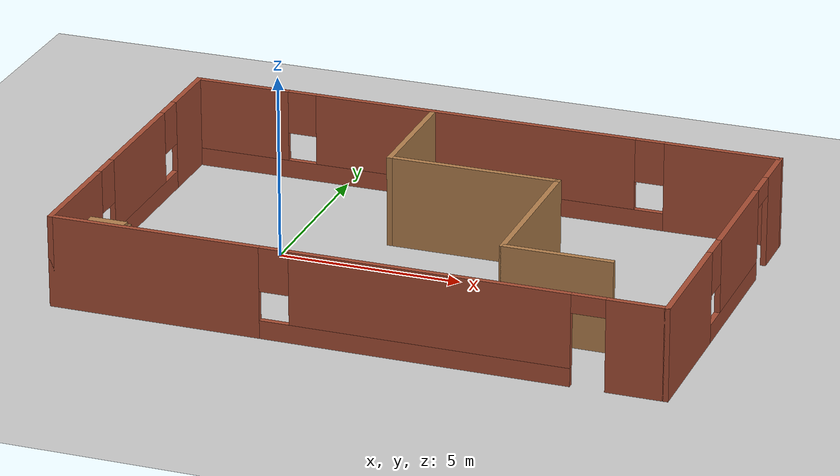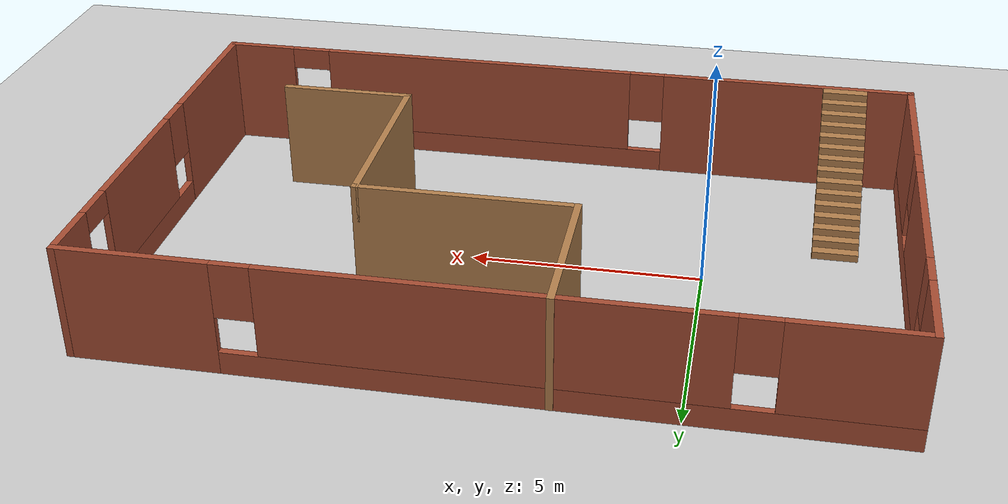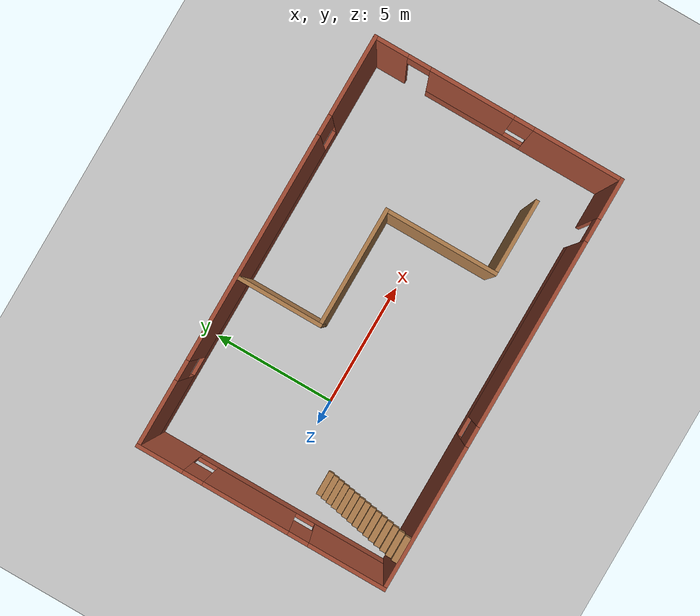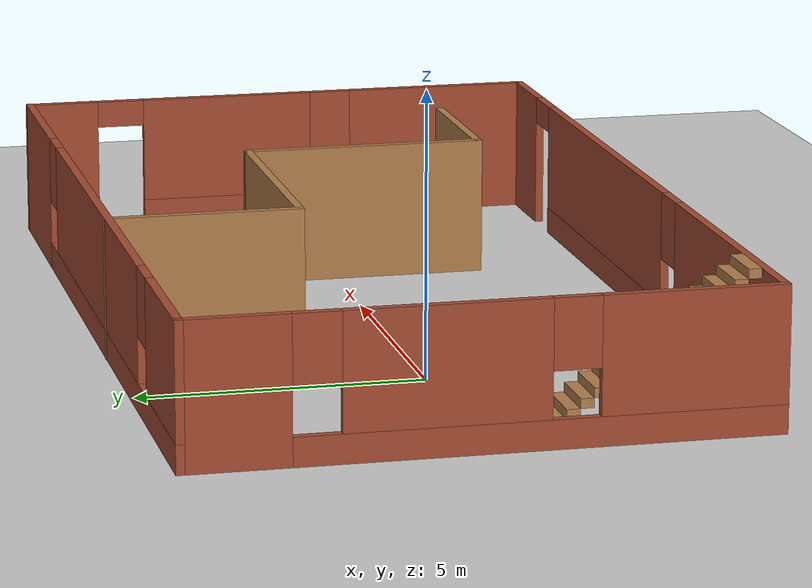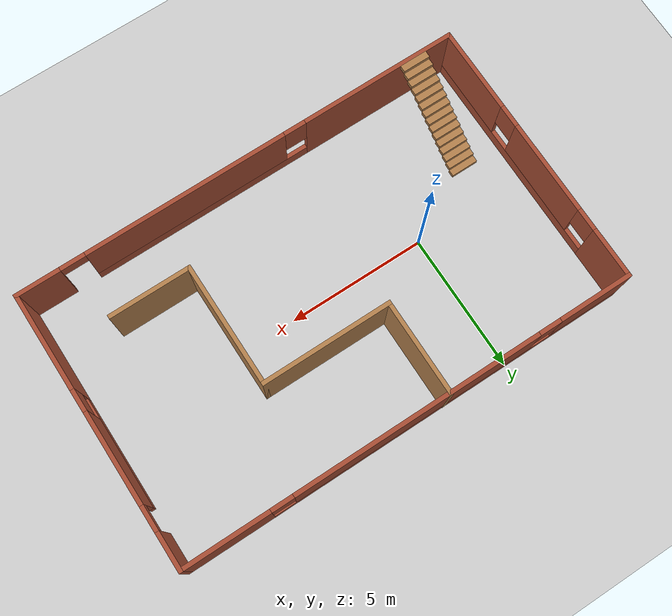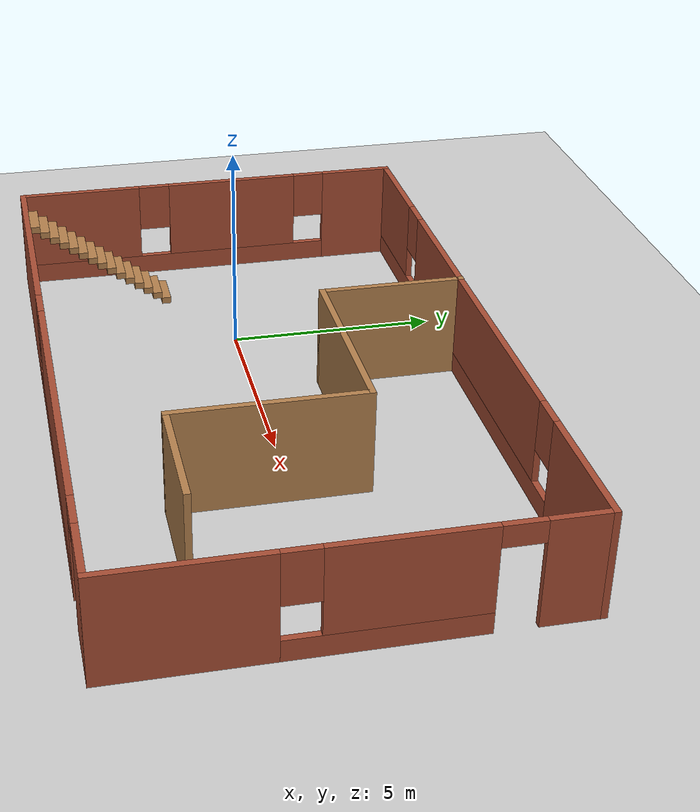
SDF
<sdf version="1.7">
 <world name="default">
  <light name="sun" type="directional">
   <pose>0 0 10 0 -0 0</pose>
   <diffuse>0.8 0.8 0.8 1</diffuse>
   <specular>0.2 0.2 0.2 1</specular>
   <attenuation>
    <range>1000</range>
    <constant>0.9</constant>
    <linear>0.01</linear>
    <quadratic>0.001</quadratic>
   </attenuation>
   <direction>-0.5 0.1 -0.9</direction>
   <spot><inner_angle>0</inner_angle><outer_angle>0</outer_angle><falloff>0</falloff></spot>
  </light>
  <model name="ground_plane">
   <static>1</static>
   <link name="link">
    <collision name="collision">
     <geometry><plane><normal>0 0 1</normal><size>100 100</size></plane></geometry>
     <surface>
      <contact><collide_bitmask>65535</collide_bitmask></contact>
      <friction><ode><mu>100</mu><mu2>50</mu2></ode></friction>
     </surface>
    </collision>
    <visual name="visual">
     <cast_shadows>0</cast_shadows>
     <geometry><plane><normal>0 0 1</normal><size>100 100</size></plane></geometry>
     <material>
      <script><uri>file://media/materials/scripts/gazebo.material</uri><name>Gazebo/Grey</name></script>
     </material>
    </visual>
   </link>
  </model>
  <gravity>0 0 -9.8</gravity>
  <magnetic_field>6e-06 2.3e-05 -4.2e-05</magnetic_field>
  <atmosphere type="adiabatic"/>
  <physics type="ode">
   <max_step_size>0.001</max_step_size>
   <real_time_factor>1</real_time_factor>
   <real_time_update_rate>1000</real_time_update_rate>
  </physics>
  <scene><ambient>0.4 0.4 0.4 1</ambient><background>0.7 0.7 0.7 1</background><shadows>1</shadows></scene>
  <spherical_coordinates>
   <surface_model>EARTH_WGS84</surface_model>
   <latitude_deg>0</latitude_deg>
   <longitude_deg>0</longitude_deg>
   <elevation>0</elevation>
   <heading_deg>0</heading_deg>
  </spherical_coordinates>
  <model name="house_test">
   <pose>3.879 0.0645 0 0 -0 0</pose>
   <link name="Stairs_1">
    <visual name="Stairs_1_Visual_0">
     <pose>-6.69443 -1.48082 0.083333 0 -0 0</pose>
     <geometry><box><size>1 0.233333 0.166667</size></box></geometry>
     <material>
      <script><uri>file://media/materials/scripts/gazebo.material</uri><name>Gazebo/Wood</name></script>
      <ambient>1 1 1 1</ambient>
     </material>
     <meta><layer>0</layer></meta>
    </visual>
    <collision name="Stairs_1_Collision_0">
     <geometry><box><size>1 0.233333 0.166667</size></box></geometry>
     <pose>-6.69443 -1.48082 0.083333 0 -0 0</pose>
    </collision>
    <visual name="Stairs_1_Visual_1">
     <pose>-6.69443 -1.71416 0.25 0 -0 0</pose>
     <geometry><box><size>1 0.233333 0.166667</size></box></geometry>
     <material>
      <script><uri>file://media/materials/scripts/gazebo.material</uri><name>Gazebo/Wood</name></script>
      <ambient>1 1 1 1</ambient>
     </material>
     <meta><layer>0</layer></meta>
    </visual>
    <collision name="Stairs_1_Collision_1">
     <geometry><box><size>1 0.233333 0.166667</size></box></geometry>
     <pose>-6.69443 -1.71416 0.25 0 -0 0</pose>
    </collision>
    <visual name="Stairs_1_Visual_2">
     <pose>-6.69443 -1.94749 0.416667 0 -0 0</pose>
     <geometry><box><size>1 0.233333 0.166667</size></box></geometry>
     <material>
      <script><uri>file://media/materials/scripts/gazebo.material</uri><name>Gazebo/Wood</name></script>
      <ambient>1 1 1 1</ambient>
     </material>
     <meta><layer>0</layer></meta>
    </visual>
    <collision name="Stairs_1_Collision_2">
     <geometry><box><size>1 0.233333 0.166667</size></box></geometry>
     <pose>-6.69443 -1.94749 0.416667 0 -0 0</pose>
    </collision>
    <visual name="Stairs_1_Visual_3">
     <pose>-6.69443 -2.18082 0.583333 0 -0 0</pose>
     <geometry><box><size>1 0.233333 0.166667</size></box></geometry>
     <material>
      <script><uri>file://media/materials/scripts/gazebo.material</uri><name>Gazebo/Wood</name></script>
      <ambient>1 1 1 1</ambient>
     </material>
     <meta><layer>0</layer></meta>
    </visual>
    <collision name="Stairs_1_Collision_3">
     <geometry><box><size>1 0.233333 0.166667</size></box></geometry>
     <pose>-6.69443 -2.18082 0.583333 0 -0 0</pose>
    </collision>
    <visual name="Stairs_1_Visual_4">
     <pose>-6.69443 -2.41416 0.75 0 -0 0</pose>
     <geometry><box><size>1 0.233333 0.166667</size></box></geometry>
     <material>
      <script><uri>file://media/materials/scripts/gazebo.material</uri><name>Gazebo/Wood</name></script>
      <ambient>1 1 1 1</ambient>
     </material>
     <meta><layer>0</layer></meta>
    </visual>
    <collision name="Stairs_1_Collision_4">
     <geometry><box><size>1 0.233333 0.166667</size></box></geometry>
     <pose>-6.69443 -2.41416 0.75 0 -0 0</pose>
    </collision>
    <visual name="Stairs_1_Visual_5">
     <pose>-6.69443 -2.64749 0.916667 0 -0 0</pose>
     <geometry><box><size>1 0.233333 0.166667</size></box></geometry>
     <material>
      <script><uri>file://media/materials/scripts/gazebo.material</uri><name>Gazebo/Wood</name></script>
      <ambient>1 1 1 1</ambient>
     </material>
     <meta><layer>0</layer></meta>
    </visual>
    <collision name="Stairs_1_Collision_5">
     <geometry><box><size>1 0.233333 0.166667</size></box></geometry>
     <pose>-6.69443 -2.64749 0.916667 0 -0 0</pose>
    </collision>
    <visual name="Stairs_1_Visual_6">
     <pose>-6.69443 -2.88082 1.08333 0 -0 0</pose>
     <geometry><box><size>1 0.233333 0.166667</size></box></geometry>
     <material>
      <script><uri>file://media/materials/scripts/gazebo.material</uri><name>Gazebo/Wood</name></script>
      <ambient>1 1 1 1</ambient>
     </material>
     <meta><layer>0</layer></meta>
    </visual>
    <collision name="Stairs_1_Collision_6">
     <geometry><box><size>1 0.233333 0.166667</size></box></geometry>
     <pose>-6.69443 -2.88082 1.08333 0 -0 0</pose>
    </collision>
    <visual name="Stairs_1_Visual_7">
     <pose>-6.69443 -3.11416 1.25 0 -0 0</pose>
     <geometry><box><size>1 0.233333 0.166667</size></box></geometry>
     <material>
      <script><uri>file://media/materials/scripts/gazebo.material</uri><name>Gazebo/Wood</name></script>
      <ambient>1 1 1 1</ambient>
     </material>
     <meta><layer>0</layer></meta>
    </visual>
    <collision name="Stairs_1_Collision_7">
     <geometry><box><size>1 0.233333 0.166667</size></box></geometry>
     <pose>-6.69443 -3.11416 1.25 0 -0 0</pose>
    </collision>
    <visual name="Stairs_1_Visual_8">
     <pose>-6.69443 -3.34749 1.41667 0 -0 0</pose>
     <geometry><box><size>1 0.233333 0.166667</size></box></geometry>
     <material>
      <script><uri>file://media/materials/scripts/gazebo.material</uri><name>Gazebo/Wood</name></script>
      <ambient>1 1 1 1</ambient>
     </material>
     <meta><layer>0</layer></meta>
    </visual>
    <collision name="Stairs_1_Collision_8">
     <geometry><box><size>1 0.233333 0.166667</size></box></geometry>
     <pose>-6.69443 -3.34749 1.41667 0 -0 0</pose>
    </collision>
    <visual name="Stairs_1_Visual_9">
     <pose>-6.69443 -3.58082 1.58333 0 -0 0</pose>
     <geometry><box><size>1 0.233333 0.166667</size></box></geometry>
     <material>
      <script><uri>file://media/materials/scripts/gazebo.material</uri><name>Gazebo/Wood</name></script>
      <ambient>1 1 1 1</ambient>
     </material>
     <meta><layer>0</layer></meta>
    </visual>
    <collision name="Stairs_1_Collision_9">
     <geometry><box><size>1 0.233333 0.166667</size></box></geometry>
     <pose>-6.69443 -3.58082 1.58333 0 -0 0</pose>
    </collision>
    <visual name="Stairs_1_Visual_10">
     <pose>-6.69443 -3.81416 1.75 0 -0 0</pose>
     <geometry><box><size>1 0.233333 0.166667</size></box></geometry>
     <material>
      <script><uri>file://media/materials/scripts/gazebo.material</uri><name>Gazebo/Wood</name></script>
      <ambient>1 1 1 1</ambient>
     </material>
     <meta><layer>0</layer></meta>
    </visual>
    <collision name="Stairs_1_Collision_10">
     <geometry><box><size>1 0.233333 0.166667</size></box></geometry>
     <pose>-6.69443 -3.81416 1.75 0 -0 0</pose>
    </collision>
    <visual name="Stairs_1_Visual_11">
     <pose>-6.69443 -4.04749 1.91667 0 -0 0</pose>
     <geometry><box><size>1 0.233333 0.166667</size></box></geometry>
     <material>
      <script><uri>file://media/materials/scripts/gazebo.material</uri><name>Gazebo/Wood</name></script>
      <ambient>1 1 1 1</ambient>
     </material>
     <meta><layer>0</layer></meta>
    </visual>
    <collision name="Stairs_1_Collision_11">
     <geometry><box><size>1 0.233333 0.166667</size></box></geometry>
     <pose>-6.69443 -4.04749 1.91667 0 -0 0</pose>
    </collision>
    <visual name="Stairs_1_Visual_12">
     <pose>-6.69443 -4.28082 2.08333 0 -0 0</pose>
     <geometry><box><size>1 0.233333 0.166667</size></box></geometry>
     <material>
      <script><uri>file://media/materials/scripts/gazebo.material</uri><name>Gazebo/Wood</name></script>
      <ambient>1 1 1 1</ambient>
     </material>
     <meta><layer>0</layer></meta>
    </visual>
    <collision name="Stairs_1_Collision_12">
     <geometry><box><size>1 0.233333 0.166667</size></box></geometry>
     <pose>-6.69443 -4.28082 2.08333 0 -0 0</pose>
    </collision>
    <visual name="Stairs_1_Visual_13">
     <pose>-6.69443 -4.51416 2.25 0 -0 0</pose>
     <geometry><box><size>1 0.233333 0.166667</size></box></geometry>
     <material>
      <script><uri>file://media/materials/scripts/gazebo.material</uri><name>Gazebo/Wood</name></script>
      <ambient>1 1 1 1</ambient>
     </material>
     <meta><layer>0</layer></meta>
    </visual>
    <collision name="Stairs_1_Collision_13">
     <geometry><box><size>1 0.233333 0.166667</size></box></geometry>
     <pose>-6.69443 -4.51416 2.25 0 -0 0</pose>
    </collision>
    <visual name="Stairs_1_Visual_14">
     <pose>-6.69443 -4.74749 2.41667 0 -0 0</pose>
     <geometry><box><size>1 0.233333 0.166667</size></box></geometry>
     <material>
      <script><uri>file://media/materials/scripts/gazebo.material</uri><name>Gazebo/Wood</name></script>
      <ambient>1 1 1 1</ambient>
     </material>
     <meta><layer>0</layer></meta>
    </visual>
    <collision name="Stairs_1_Collision_14">
     <geometry><box><size>1 0.233333 0.166667</size></box></geometry>
     <pose>-6.69443 -4.74749 2.41667 0 -0 0</pose>
    </collision>
   </link>
   <link name="Wall_54">
    <pose>-8.175 -0.0035 0 0 -0 -1.5708</pose>
    <visual name="Wall_54_Visual_0">
     <pose>-4.07 0 1.25 0 -0 0</pose>
     <geometry><box><size>1.86001 0.15 2.5</size></box></geometry>
     <material>
      <script><uri>file://media/materials/scripts/gazebo.material</uri><name>Gazebo/Bricks</name></script>
      <ambient>1 1 1 1</ambient>
     </material>
     <meta><layer>0</layer></meta>
    </visual>
    <collision name="Wall_54_Collision_0">
     <geometry><box><size>1.86001 0.15 2.5</size></box></geometry>
     <pose>-4.07 0 1.25 0 -0 0</pose>
    </collision>
    <visual name="Wall_54_Visual_1">
     <pose>0.930004 0 0.25 0 -0 0</pose>
     <geometry><box><size>8.13999 0.15 0.5</size></box></geometry>
     <material>
      <script><uri>file://media/materials/scripts/gazebo.material</uri><name>Gazebo/Bricks</name></script>
      <ambient>1 1 1 1</ambient>
     </material>
     <meta><layer>0</layer></meta>
    </visual>
    <collision name="Wall_54_Collision_1">
     <geometry><box><size>8.13999 0.15 0.5</size></box></geometry>
     <pose>0.930004 0 0.25 0 -0 0</pose>
    </collision>
    <visual name="Wall_54_Visual_2">
     <pose>-0.634401 0 1.5 0 -0 0</pose>
     <geometry><box><size>3.41118 0.15 2</size></box></geometry>
     <material>
      <script><uri>file://media/materials/scripts/gazebo.material</uri><name>Gazebo/Bricks</name></script>
      <ambient>1 1 1 1</ambient>
     </material>
     <meta><layer>0</layer></meta>
    </visual>
    <collision name="Wall_54_Collision_2">
     <geometry><box><size>3.41118 0.15 2</size></box></geometry>
     <pose>-0.634401 0 1.5 0 -0 0</pose>
    </collision>
    <visual name="Wall_54_Visual_3">
     <pose>3.4356 0 1.5 0 -0 0</pose>
     <geometry><box><size>3.12881 0.15 2</size></box></geometry>
     <material>
      <script><uri>file://media/materials/scripts/gazebo.material</uri><name>Gazebo/Bricks</name></script>
      <ambient>1 1 1 1</ambient>
     </material>
     <meta><layer>0</layer></meta>
    </visual>
    <collision name="Wall_54_Collision_3">
     <geometry><box><size>3.12881 0.15 2</size></box></geometry>
     <pose>3.4356 0 1.5 0 -0 0</pose>
    </collision>
    <visual name="Wall_54_Visual_4">
     <pose>-2.73999 0 1.9 0 -0 0</pose>
     <geometry><box><size>0.8 0.15 1.2</size></box></geometry>
     <material>
      <script><uri>file://media/materials/scripts/gazebo.material</uri><name>Gazebo/Bricks</name></script>
      <ambient>1 1 1 1</ambient>
     </material>
     <meta><layer>0</layer></meta>
    </visual>
    <collision name="Wall_54_Collision_4">
     <geometry><box><size>0.8 0.15 1.2</size></box></geometry>
     <pose>-2.73999 0 1.9 0 -0 0</pose>
    </collision>
    <visual name="Wall_54_Visual_5">
     <pose>1.47119 0 1.9 0 -0 0</pose>
     <geometry><box><size>0.8 0.15 1.2</size></box></geometry>
     <material>
      <script><uri>file://media/materials/scripts/gazebo.material</uri><name>Gazebo/Bricks</name></script>
      <ambient>1 1 1 1</ambient>
     </material>
     <meta><layer>0</layer></meta>
    </visual>
    <collision name="Wall_54_Collision_5">
     <geometry><box><size>0.8 0.15 1.2</size></box></geometry>
     <pose>1.47119 0 1.9 0 -0 0</pose>
    </collision>
   </link>
   <link name="Wall_55">
    <pose>0 -4.9285 0 0 -0 0</pose>
    <visual name="Wall_55_Visual_0">
     <pose>-5.37374 0 1.25 0 -0 0</pose>
     <geometry><box><size>5.75251 0.15 2.5</size></box></geometry>
     <material>
      <script><uri>file://media/materials/scripts/gazebo.material</uri><name>Gazebo/Bricks</name></script>
      <ambient>1 1 1 1</ambient>
     </material>
     <meta><layer>0</layer></meta>
    </visual>
    <collision name="Wall_55_Collision_0">
     <geometry><box><size>5.75251 0.15 2.5</size></box></geometry>
     <pose>-5.37374 0 1.25 0 -0 0</pose>
    </collision>
    <visual name="Wall_55_Visual_1">
     <pose>7.43185 0 1.25 0 -0 0</pose>
     <geometry><box><size>1.63631 0.15 2.5</size></box></geometry>
     <material>
      <script><uri>file://media/materials/scripts/gazebo.material</uri><name>Gazebo/Bricks</name></script>
      <ambient>1 1 1 1</ambient>
     </material>
     <meta><layer>0</layer></meta>
    </visual>
    <collision name="Wall_55_Collision_1">
     <geometry><box><size>1.63631 0.15 2.5</size></box></geometry>
     <pose>7.43185 0 1.25 0 -0 0</pose>
    </collision>
    <visual name="Wall_55_Visual_2">
     <pose>1.6081 0 0.25 0 -0 0</pose>
     <geometry><box><size>8.21118 0.15 0.5</size></box></geometry>
     <material>
      <script><uri>file://media/materials/scripts/gazebo.material</uri><name>Gazebo/Bricks</name></script>
      <ambient>1 1 1 1</ambient>
     </material>
     <meta><layer>0</layer></meta>
    </visual>
    <collision name="Wall_55_Collision_2">
     <geometry><box><size>8.21118 0.15 0.5</size></box></geometry>
     <pose>1.6081 0 0.25 0 -0 0</pose>
    </collision>
    <visual name="Wall_55_Visual_3">
     <pose>2.0081 0 1.5 0 -0 0</pose>
     <geometry><box><size>7.41118 0.15 2</size></box></geometry>
     <material>
      <script><uri>file://media/materials/scripts/gazebo.material</uri><name>Gazebo/Bricks</name></script>
      <ambient>1 1 1 1</ambient>
     </material>
     <meta><layer>0</layer></meta>
    </visual>
    <collision name="Wall_55_Collision_3">
     <geometry><box><size>7.41118 0.15 2</size></box></geometry>
     <pose>2.0081 0 1.5 0 -0 0</pose>
    </collision>
    <visual name="Wall_55_Visual_4">
     <pose>-2.09749 0 1.9 0 -0 0</pose>
     <geometry><box><size>0.8 0.15 1.2</size></box></geometry>
     <material>
      <script><uri>file://media/materials/scripts/gazebo.material</uri><name>Gazebo/Bricks</name></script>
      <ambient>1 1 1 1</ambient>
     </material>
     <meta><layer>0</layer></meta>
    </visual>
    <collision name="Wall_55_Collision_4">
     <geometry><box><size>0.8 0.15 1.2</size></box></geometry>
     <pose>-2.09749 0 1.9 0 -0 0</pose>
    </collision>
    <visual name="Wall_55_Visual_5">
     <pose>6.16369 0 2.25 0 -0 0</pose>
     <geometry><box><size>0.9 0.15 0.5</size></box></geometry>
     <material>
      <script><uri>file://media/materials/scripts/gazebo.material</uri><name>Gazebo/Bricks</name></script>
      <ambient>1 1 1 1</ambient>
     </material>
     <meta><layer>0</layer></meta>
    </visual>
    <collision name="Wall_55_Collision_5">
     <geometry><box><size>0.9 0.15 0.5</size></box></geometry>
     <pose>6.16369 0 2.25 0 -0 0</pose>
    </collision>
   </link>
   <link name="Wall_56">
    <pose>8.175 -0.0035 0 0 -0 1.5708</pose>
    <visual name="Wall_56_Visual_0">
     <pose>-3.21057 0 1.25 0 -0 0</pose>
     <geometry><box><size>3.57886 0.15 2.5</size></box></geometry>
     <material>
      <script><uri>file://media/materials/scripts/gazebo.material</uri><name>Gazebo/Bricks</name></script>
      <ambient>1 1 1 1</ambient>
     </material>
     <meta><layer>0</layer></meta>
    </visual>
    <collision name="Wall_56_Collision_0">
     <geometry><box><size>3.57886 0.15 2.5</size></box></geometry>
     <pose>-3.21057 0 1.25 0 -0 0</pose>
    </collision>
    <visual name="Wall_56_Visual_1">
     <pose>4.30395 0 1.25 0 -0 0</pose>
     <geometry><box><size>1.39211 0.15 2.5</size></box></geometry>
     <material>
      <script><uri>file://media/materials/scripts/gazebo.material</uri><name>Gazebo/Bricks</name></script>
      <ambient>1 1 1 1</ambient>
     </material>
     <meta><layer>0</layer></meta>
    </visual>
    <collision name="Wall_56_Collision_1">
     <geometry><box><size>1.39211 0.15 2.5</size></box></geometry>
     <pose>4.30395 0 1.25 0 -0 0</pose>
    </collision>
    <visual name="Wall_56_Visual_2">
     <pose>0.643377 0 0.25 0 -0 0</pose>
     <geometry><box><size>4.12903 0.15 0.5</size></box></geometry>
     <material>
      <script><uri>file://media/materials/scripts/gazebo.material</uri><name>Gazebo/Bricks</name></script>
      <ambient>1 1 1 1</ambient>
     </material>
     <meta><layer>0</layer></meta>
    </visual>
    <collision name="Wall_56_Collision_2">
     <geometry><box><size>4.12903 0.15 0.5</size></box></geometry>
     <pose>0.643377 0 0.25 0 -0 0</pose>
    </collision>
    <visual name="Wall_56_Visual_3">
     <pose>1.04338 0 1.5 0 -0 0</pose>
     <geometry><box><size>3.32903 0.15 2</size></box></geometry>
     <material>
      <script><uri>file://media/materials/scripts/gazebo.material</uri><name>Gazebo/Bricks</name></script>
      <ambient>1 1 1 1</ambient>
     </material>
     <meta><layer>0</layer></meta>
    </visual>
    <collision name="Wall_56_Collision_3">
     <geometry><box><size>3.32903 0.15 2</size></box></geometry>
     <pose>1.04338 0 1.5 0 -0 0</pose>
    </collision>
    <visual name="Wall_56_Visual_4">
     <pose>-1.02114 0 1.9 0 -0 0</pose>
     <geometry><box><size>0.8 0.15 1.2</size></box></geometry>
     <material>
      <script><uri>file://media/materials/scripts/gazebo.material</uri><name>Gazebo/Bricks</name></script>
      <ambient>1 1 1 1</ambient>
     </material>
     <meta><layer>0</layer></meta>
    </visual>
    <collision name="Wall_56_Collision_4">
     <geometry><box><size>0.8 0.15 1.2</size></box></geometry>
     <pose>-1.02114 0 1.9 0 -0 0</pose>
    </collision>
    <visual name="Wall_56_Visual_5">
     <pose>3.15789 0 2.25 0 -0 0</pose>
     <geometry><box><size>0.9 0.15 0.5</size></box></geometry>
     <material>
      <script><uri>file://media/materials/scripts/gazebo.material</uri><name>Gazebo/Bricks</name></script>
      <ambient>1 1 1 1</ambient>
     </material>
     <meta><layer>0</layer></meta>
    </visual>
    <collision name="Wall_56_Collision_5">
     <geometry><box><size>0.9 0.15 0.5</size></box></geometry>
     <pose>3.15789 0 2.25 0 -0 0</pose>
    </collision>
   </link>
   <link name="Wall_57">
    <pose>0 4.9215 0 0 -0 3.14159</pose>
    <visual name="Wall_57_Visual_0">
     <pose>-6.65163 0 1.25 0 -0 0</pose>
     <geometry><box><size>3.19674 0.15 2.5</size></box></geometry>
     <material>
      <script><uri>file://media/materials/scripts/gazebo.material</uri><name>Gazebo/Bricks</name></script>
      <ambient>1 1 1 1</ambient>
     </material>
     <meta><layer>0</layer></meta>
    </visual>
    <collision name="Wall_57_Collision_0">
     <geometry><box><size>3.19674 0.15 2.5</size></box></geometry>
     <pose>-6.65163 0 1.25 0 -0 0</pose>
    </collision>
    <visual name="Wall_57_Visual_1">
     <pose>1.59837 0 0.25 0 -0 0</pose>
     <geometry><box><size>13.3033 0.15 0.5</size></box></geometry>
     <material>
      <script><uri>file://media/materials/scripts/gazebo.material</uri><name>Gazebo/Bricks</name></script>
      <ambient>1 1 1 1</ambient>
     </material>
     <meta><layer>0</layer></meta>
    </visual>
    <collision name="Wall_57_Collision_1">
     <geometry><box><size>13.3033 0.15 0.5</size></box></geometry>
     <pose>1.59837 0 0.25 0 -0 0</pose>
    </collision>
    <visual name="Wall_57_Visual_2">
     <pose>0.24907 0 1.5 0 -0 0</pose>
     <geometry><box><size>9.00466 0.15 2</size></box></geometry>
     <material>
      <script><uri>file://media/materials/scripts/gazebo.material</uri><name>Gazebo/Bricks</name></script>
      <ambient>1 1 1 1</ambient>
     </material>
     <meta><layer>0</layer></meta>
    </visual>
    <collision name="Wall_57_Collision_2">
     <geometry><box><size>9.00466 0.15 2</size></box></geometry>
     <pose>0.24907 0 1.5 0 -0 0</pose>
    </collision>
    <visual name="Wall_57_Visual_3">
     <pose>6.9007 0 1.5 0 -0 0</pose>
     <geometry><box><size>2.6986 0.15 2</size></box></geometry>
     <material>
      <script><uri>file://media/materials/scripts/gazebo.material</uri><name>Gazebo/Bricks</name></script>
      <ambient>1 1 1 1</ambient>
     </material>
     <meta><layer>0</layer></meta>
    </visual>
    <collision name="Wall_57_Collision_3">
     <geometry><box><size>2.6986 0.15 2</size></box></geometry>
     <pose>6.9007 0 1.5 0 -0 0</pose>
    </collision>
    <visual name="Wall_57_Visual_4">
     <pose>-4.65326 0 1.9 0 -0 0</pose>
     <geometry><box><size>0.8 0.15 1.2</size></box></geometry>
     <material>
      <script><uri>file://media/materials/scripts/gazebo.material</uri><name>Gazebo/Bricks</name></script>
      <ambient>1 1 1 1</ambient>
     </material>
     <meta><layer>0</layer></meta>
    </visual>
    <collision name="Wall_57_Collision_4">
     <geometry><box><size>0.8 0.15 1.2</size></box></geometry>
     <pose>-4.65326 0 1.9 0 -0 0</pose>
    </collision>
    <visual name="Wall_57_Visual_5">
     <pose>5.1514 0 1.9 0 -0 0</pose>
     <geometry><box><size>0.8 0.15 1.2</size></box></geometry>
     <material>
      <script><uri>file://media/materials/scripts/gazebo.material</uri><name>Gazebo/Bricks</name></script>
      <ambient>1 1 1 1</ambient>
     </material>
     <meta><layer>0</layer></meta>
    </visual>
    <collision name="Wall_57_Collision_5">
     <geometry><box><size>0.8 0.15 1.2</size></box></geometry>
     <pose>5.1514 0 1.9 0 -0 0</pose>
    </collision>
   </link>
   <link name="Wall_59">
    <collision name="Wall_59_Collision">
     <geometry><box><size>3.5 0.15 2.5</size></box></geometry>
     <pose>0 0 1.25 0 -0 0</pose>
    </collision>
    <visual name="Wall_59_Visual">
     <pose>0 0 1.25 0 -0 0</pose>
     <geometry><box><size>3.5 0.15 2.5</size></box></geometry>
     <material>
      <script><uri>file://media/materials/scripts/gazebo.material</uri><name>Gazebo/Wood</name></script>
      <ambient>1 1 1 1</ambient>
     </material>
     <meta><layer>0</layer></meta>
    </visual>
    <pose>-1.407 3.2535 0 0 -0 -1.5708</pose>
   </link>
   <link name="Wall_60">
    <collision name="Wall_60_Collision">
     <geometry><box><size>4.75 0.15 2.5</size></box></geometry>
     <pose>0 0 1.25 0 -0 0</pose>
    </collision>
    <visual name="Wall_60_Visual">
     <pose>0 0 1.25 0 -0 0</pose>
     <geometry><box><size>4.75 0.15 2.5</size></box></geometry>
     <material>
      <script><uri>file://media/materials/scripts/gazebo.material</uri><name>Gazebo/Wood</name></script>
      <ambient>1 1 1 1</ambient>
     </material>
     <meta><layer>0</layer></meta>
    </visual>
    <pose>0.893 1.5785 0 0 -0 0</pose>
   </link>
   <link name="Wall_61">
    <collision name="Wall_61_Collision">
     <geometry><box><size>4.5 0.15 2.5</size></box></geometry>
     <pose>0 0 1.25 0 -0 0</pose>
    </collision>
    <visual name="Wall_61_Visual">
     <pose>0 0 1.25 0 -0 0</pose>
     <geometry><box><size>4.5 0.15 2.5</size></box></geometry>
     <material>
      <script><uri>file://media/materials/scripts/gazebo.material</uri><name>Gazebo/Wood</name></script>
      <ambient>1 1 1 1</ambient>
     </material>
     <meta><layer>0</layer></meta>
    </visual>
    <pose>3.193 -0.5965 0 0 -0 -1.5708</pose>
   </link>
   <link name="Wall_62">
    <collision name="Wall_62_Collision">
     <geometry><box><size>3 0.15 2.5</size></box></geometry>
     <pose>0 0 1.25 0 -0 0</pose>
    </collision>
    <visual name="Wall_62_Visual">
     <pose>0 0 1.25 0 -0 0</pose>
     <geometry><box><size>3 0.15 2.5</size></box></geometry>
     <material>
      <script><uri>file://media/materials/scripts/gazebo.material</uri><name>Gazebo/Wood</name></script>
      <ambient>1 1 1 1</ambient>
     </material>
     <meta><layer>0</layer></meta>
    </visual>
    <pose>4.618 -2.7715 0 0 -0 0</pose>
   </link>
   <static>1</static>
  </model>
 </world>
</sdf>
